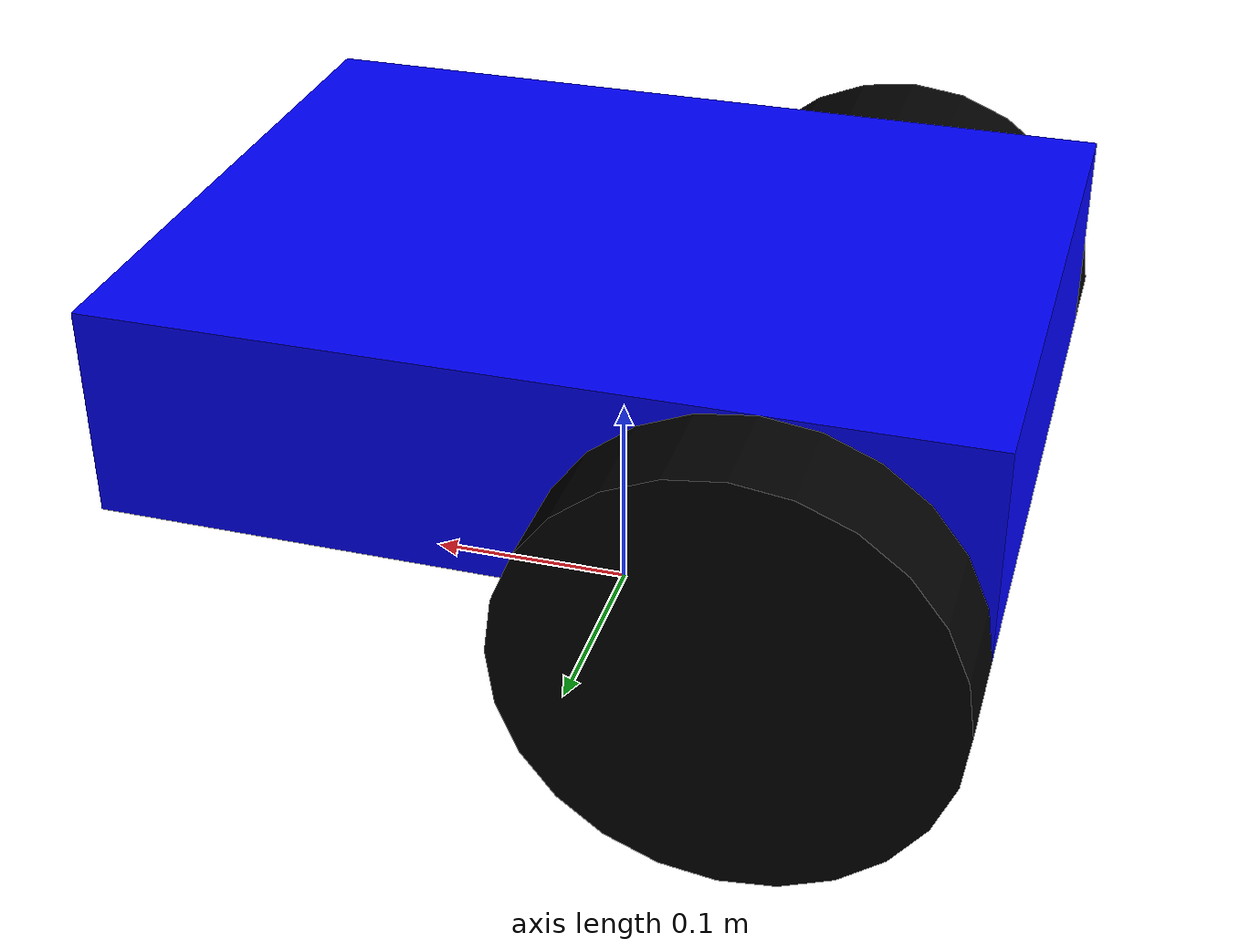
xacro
<?xml version="1.0"?>
<robot xmlns:xacro="http://www.ros.org/wiki/xacro" name="robo_diferenciado">

    <xacro:arg name="wheel_radius" default="0.1"/>
    <xacro:arg name="wheel_separation" default="0.175"/>

    <xacro:include filename="$(find robo_diferenciado)/urdf/diferenciado_robot_model.urdf.xacro"/>
    <xacro:include filename="$(find robo_diferenciado)/urdf/wheels.ros2_control.xacro"/>

    <xacro:robot_diferenciado
        wheel_radius="$(arg wheel_radius)"
        wheel_separation="$(arg wheel_separation)"
        chassis_mass="5.0"
        chassis_length="0.4"
        chassis_width="0.3"
        chassis_height="0.1"
        wheel_mass="1.0"
        wheel_width="0.05"
        caster_radius="0.05"
        caster_mass="0.5"
        caster_offset_x="0.15"/>

    <gazebo>
        <plugin filename="gz_ros2_control-system" name="gz_ros2_control::GazeboSimROS2ControlPlugin">
            <parameters>$(find robo_diferenciado)/config/diff_drive_control.yaml</parameters>
        </plugin>
        <plugin
            filename="libignition-gazebo-odometry-publisher-system.so"
            name="ignition::gazebo::systems::OdometryPublisher">
            <odom_frame>ground_truth</odom_frame>
            <robot_base_frame>base_link</robot_base_frame>
            <dimensions>2</dimensions>
        </plugin>
    </gazebo>

</robot>

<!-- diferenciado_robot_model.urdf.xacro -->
<robot xmlns:xacro="http://www.ros.org/wiki/xacro" name="robo_diferenciado">

    <xacro:macro name="box_inertia" params="m x y z">
        <inertial>
            <mass value="${m}"/>
            <inertia ixx="${(m/12) * (y*y + z*z)}" ixy="0" ixz="0"
                     iyy="${(m/12) * (x*x + z*z)}" iyz="0"
                     izz="${(m/12) * (x*x + y*y)}"/>
        </inertial>
    </xacro:macro>

    <xacro:macro name="cylinder_inertia" params="m r h">
        <inertial>
            <origin xyz="0 0 0" rpy="${pi/2} 0 0" />
            <mass value="${m}"/>
            <inertia ixx="${(m/12) * (3*r*r + h*h)}" ixy="0" ixz="0"
                     iyy="${(m/12) * (3*r*r + h*h)}" iyz="0"
                     izz="${(m/2) * (r*r)}"/>
        </inertial>
    </xacro:macro>

    <xacro:macro name="sphere_inertia" params="m r">
        <inertial>
            <mass value="${m}"/>
            <inertia ixx="${(2/5) * m * (r*r)}" ixy="0.0" ixz="0.0"
                     iyy="${(2/5) * m * (r*r)}" iyz="0.0"
                     izz="${(2/5) * m * (r*r)}"/>
        </inertial>
    </xacro:macro>

    <xacro:macro name="robot_diferenciado" params="wheel_radius
        wheel_separation
        chassis_mass
        chassis_length
        chassis_width
        chassis_height
        wheel_mass
        wheel_width
        caster_radius
        caster_mass
        caster_offset_x">

    <link name="base_link">
    </link>

    <link name="chassis">
        <visual>
            <origin xyz="0 0 ${chassis_height/2}" rpy="0 0 0"/>
            <geometry>
                <box size="${chassis_length} ${chassis_width} ${chassis_height}"/>
            </geometry>
            <material name="blue">
                <color rgba="0 0 1 1"/>
            </material>
        </visual>
        <collision>
            <origin xyz="0 0 ${chassis_height/2}" rpy="0 0 0"/>
            <geometry>
                <box size="${chassis_length} ${chassis_width} ${chassis_height}"/>
            </geometry>
        </collision>
        <xacro:box_inertia m="${chassis_mass}" x="${chassis_length}" y="${chassis_width}" z="${chassis_height}"/>
    </link>

    <joint name="base_joint" type="fixed">
        <parent link="base_link"/>
        <child link="chassis"/>
        <origin xyz="0 0 ${wheel_radius}" rpy="0 0 0"/>
    </joint>

    <link name="left_wheel">
        <visual>
            <origin xyz="0 0 0" rpy="${pi/2} 0 0"/>
            <geometry>
                <cylinder radius="${wheel_radius}" length="${wheel_width}"/>
            </geometry>
            <material name="black">
                <color rgba="0 0 0 1"/>
            </material>
        </visual>
        <collision>
            <origin xyz="0 0 0" rpy="${pi/2} 0 0"/>
            <geometry>
                <cylinder radius="${wheel_radius}" length="${wheel_width}"/>
            </geometry>
        </collision>
        <xacro:cylinder_inertia m="${wheel_mass}" r="${wheel_radius}" h="${wheel_width}"/>
    </link>

    <joint name="left_wheel_joint" type="continuous">
        <parent link="chassis"/>
        <child link="left_wheel"/>
        <origin xyz="-0.1 ${wheel_separation} 0" rpy="0 0 0"/> <axis xyz="0 1 0"/>
    </joint>

    <link name="right_wheel">
        <visual>
            <origin xyz="0 0 0" rpy="${pi/2} 0 0"/>
            <geometry>
                <cylinder radius="${wheel_radius}" length="${wheel_width}"/>
            </geometry>
            <material name="black">
                <color rgba="0 0 0 1"/>
            </material>
        </visual>
        <collision>
            <origin xyz="0 0 0" rpy="${pi/2} 0 0"/>
            <geometry>
                <cylinder radius="${wheel_radius}" length="${wheel_width}"/>
            </geometry>
        </collision>
        <xacro:cylinder_inertia m="${wheel_mass}" r="${wheel_radius}" h="${wheel_width}"/>
    </link>

    <joint name="right_wheel_joint" type="continuous">
        <parent link="chassis"/>
        <child link="right_wheel"/>
        <origin xyz="-0.1 -${wheel_separation} 0" rpy="0 0 0"/> <axis xyz="0 1 0"/>
    </joint>

    <link name="caster_wheel">
        <visual>
            <origin xyz="0 0 0" rpy="0 0 0"/>
            <geometry>
                <sphere radius="${caster_radius}"/>
            </geometry>
            <material name="white">
                <color rgba="1 1 1 1"/>
            </material>
        </visual>
        <collision>
            <origin xyz="0 0 0" rpy="0 0 0"/>
            <geometry>
                <sphere radius="${caster_radius}"/>
            </geometry>
        </collision>
        <xacro:sphere_inertia m="${caster_mass}" r="${caster_radius}"/>
    </link>

    <joint name="caster_joint" type="continuous">
        <parent link="chassis"/>
        <child link="caster_wheel"/>
        <origin xyz="${caster_offset_x} 0 -${wheel_radius - caster_radius}" rpy="0 0 0"/>
    </joint>

    <gazebo reference="left_wheel">
        <mu1>2000.0</mu1>
        <mu2>0.5</mu2>
        <kp>10000000.0</kp>
        <kd>1.0</kd>
        <fdir1>1 0 0</fdir1>
        <material>Gazebo/Black</material>
    </gazebo>

    <gazebo reference="right_wheel">
        <mu1>2000.0</mu1>
        <mu2>0.5</mu2>
        <kp>10000000.0</kp>
        <kd>1.0</kd>
        <fdir1>1 0 0</fdir1>
        <material>Gazebo/Black</material>
    </gazebo>

    <gazebo reference="caster_wheel">
        <mu1>0.001</mu1>
        <mu2>0.001</mu2>
        <kp>1000000.0</kp>
        <kd>1.0</kd>
        <material>Gazebo/White</material>
    </gazebo>
    </xacro:macro>

</robot>
